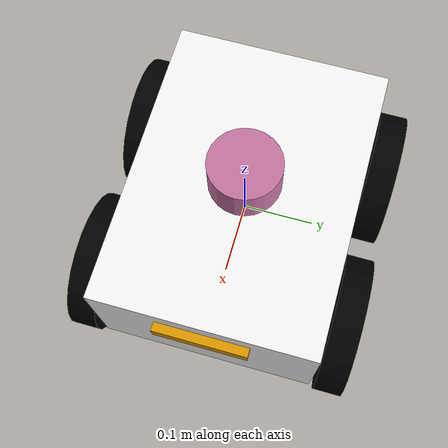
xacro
<?xml version="1.0"?>
<robot xmlns:xacro="http://www.ros.org/wiki/xacro" name="my_robot">
    <xacro:include filename="$(find robot_description)/urdf/robot_core.xacro"/>
    <xacro:include filename="$(find robot_description)/urdf/lidar.xacro"/>
    <xacro:include filename="$(find robot_description)/urdf/imu.xacro"/>
    <xacro:include filename="$(find robot_description)/urdf/depth_camera.xacro"/>
    <xacro:include filename="$(find robot_description)/urdf/gazebo_control.xacro"/>
</robot>

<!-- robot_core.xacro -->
<robot xmlns:xacro="http://www.ros.org/wiki/xacro" name="my_robot">
    <!-- Define robot constants -->
    <xacro:property name="base_width" value="0.31"/>
    <xacro:property name="base_length" value="0.42"/>
    <xacro:property name="base_height" value="0.18"/>

    <xacro:property name="wheel_radius" value="0.10"/>
    <xacro:property name="wheel_width" value="0.04"/>
    <xacro:property name="wheel_ygap" value="0.025"/>
    <xacro:property name="wheel_zoff" value="0.05"/>
    <xacro:property name="wheel_xoff" value="0.12"/>

    <!-- Define color -->
    <material name="white">
        <color rgba="1 1 1 1"/>
    </material>

    <material name="orange">
        <color rgba="1 0.3 0.1 1"/>
    </material>

    <material name="blue">
        <color rgba="0.2 0.2 1 1"/>
    </material>

    <material name="black">
        <color rgba="0 0 0 1"/>
    </material>

    <material name="red">
        <color rgba="1 0 0 1"/>
    </material>

     <!-- Define inertial (Quan tinh) property macros -->
    <xacro:macro name="box_inertial" params="m w h d">
        <inertial>
            <origin xyz="0 0 0" rpy="${pi/2} 0 ${pi/2}"/>
            <mass value="${m}"/>
            <inertia ixx="${(m/12) * (h*h + d*d)}" ixy="0.0" ixz="0.0" iyy="${(m/12) * (w*w + d*d)}" iyz="0.0" izz="${(m/12) * (w*w + h*h)}"/>
        </inertial>
    </xacro:macro>

    <xacro:macro name="cylinder_inertia" params="m r h">
        <inertial>
            <origin xyz="0 0 0" rpy="${pi/2} 0 0"/>
            <mass value="${m}"/>
            <inertia ixx="${(m/12) * (3*r*r + h*h)}" ixy="0" ixz="0" iyy="${(m/12) * (3*r*r + h*h)}" iyz="0.0" izz="${(m/12) * (r*r)}"/>
        </inertial>
    </xacro:macro>

    <xacro:macro name="sphere_inertia" params="m r">
        <inertial>
            <mass value="${m}"/>
            <inertia ixx="${(2/5) * m * (r*r)}" ixy="0" ixz="0" iyy="${(2/5) * m * (r*r)}" iyz="0.0" izz="${(2/5) * (r*r)}"/>
        </inertial>
    </xacro:macro>
    <xacro:property name="caster_xoff" value="0.14"/>

    <!-- Robot Footprint -->
    <link name="base_footprint">
        <xacro:box_inertial m="15" w="${base_width}" d="${base_length}" h="${base_height}"/>
    </link>

    <joint name="base_joint" type="fixed">
        <parent link="base_link"/>
        <child link="base_footprint"/>
        <origin xyz="0.0 0.0 -${wheel_radius+wheel_zoff}" rpy="0 0 0"/>
    </joint>

     <!-- Robot Base -->
    <link name="base_link">
        <visual>
            <geometry>
                <box size="${base_length} ${base_width} ${base_height}"/>
            </geometry>

            <material name="white"/>
        </visual>

        <collision>
            <geometry>
                <box size="${base_length} ${base_width} ${base_height}"/>
            </geometry>
        </collision>
    </link>
    <gazebo reference="base_link">
        <material>
            Gazebo/White
        </material>
    </gazebo>

    <!-- Wheels -->
    <xacro:macro name="wheel" params="prefix x_reflect y_reflect">
        <link name="${prefix}_link">
            <visual>
                <origin xyz="0 0 0" rpy="${pi/2} 0 0"/>
                <geometry>
                    <cylinder radius="${wheel_radius}" length="${wheel_width}"/>
                </geometry>
                <material name="black"/>
            </visual>

            <collision>
                <origin xyz="0 0 0" rpy="${pi/2} 0 0"/>
                <geometry>
                    <cylinder radius="${wheel_radius}" length="${wheel_width}"/>
                </geometry>
            </collision>

            <xacro:cylinder_inertia m="0.5" r="${wheel_radius}" h="${wheel_width}"/>
        </link>

        <joint name="${prefix}_joint" type="continuous">
            <parent link="base_link"/>
            <child link="${prefix}_link"/>
            <origin xyz="${x_reflect*wheel_xoff} ${y_reflect*(base_width/2+wheel_ygap)} ${-wheel_zoff}" rpy="0 0 0"/>
            <axis xyz="0 1 0"/>
        </joint>

        <gazebo reference="${prefix}_link">
            <mu1>0.1</mu1>
            <mu2>0.1</mu2>
            <material>
                Gazebo/Black
            </material>
        </gazebo>
    </xacro:macro>

    <xacro:wheel prefix="front_left" x_reflect="1" y_reflect="1" />
    <xacro:wheel prefix="front_right" x_reflect="1" y_reflect="-1" />
    <xacro:wheel prefix="back_left" x_reflect="-1" y_reflect="1" />
    <xacro:wheel prefix="back_right" x_reflect="-1" y_reflect="-1" />

    <!-- Caster Wheel -->
</robot>

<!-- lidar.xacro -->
<robot xmlns:xacro="http://www.ros.org/wiki/xacro" name="my_robot">
    <!-- Add Gazebo Lidar Plugin -->
    <link name="laser_frame">
        <inertial>
            <origin xyz="0 0 0" rpy="0 0 0"/>
            <mass value="0.125"/>
            <inertia ixx="0.001" ixy="0" ixz="0" iyy="0.001" iyz="0" izz="0.001"/>
        </inertial>

        <collision>
            <origin xyz="0 0 0" rpy="0 0 0"/>
            <geometry>
                <cylinder radius="0.0508" length="0.055"/>
            </geometry>
        </collision>

        <visual>
            <origin xyz="0 0 0" rpy="0 0 0"/>
            <geometry>
                <cylinder radius="0.0508" length="0.055"/>
            </geometry>
        </visual>
    </link>

    <joint name="lidar_joint" type="fixed">
        <parent link="base_link"/>
        <child link="laser_frame"/>
        <origin xyz="0 0 0.12" rpy="0 0 0"/>
    </joint>

    <gazebo reference="laser_frame">
        <sensor name="laser" type="ray">\
            <pose>0 0 0 0 0 0</pose>
            <always_on>true</always_on>
            <visualize>true</visualize>
            <update_rate>10</update_rate>
            <ray>
                <scan>
                    <horizontal>
                        <samples>360</samples>
                        <resolution>1</resolution>
                        <min_angle>-3.14</min_angle>
                        <max_angle>3.14</max_angle>
                    </horizontal>
                </scan>

                <range>
                    <min>0.3</min>
                    <max>12</max>
                    <resolution>0.01</resolution>
                </range>

                <noise>
                    <type>gaussian</type>
                    <mean>0.0</mean>
                    <stddev>0.01</stddev>
                </noise>
            </ray>

            <!-- Plugin: [scan] or [laser_controller] -->
            <plugin name="laser_controller" filename="libgazebo_ros_ray_sensor.so">
                <ros>
                    <remapping>~/out:=scan</remapping>
                </ros>

                <output_type>sensor_msgs/LaserScan</output_type>
                <frame_name>laser_frame</frame_name>
            </plugin>
        </sensor>
    </gazebo>
</robot>

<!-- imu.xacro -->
<robot xmlns:xacro="http://www.ros.org/wiki/xacro" name="my_robot">
    <!-- Define inertial (Quan tinh) property macros -->
    <xacro:macro name="box_inertial" params="m w h d">
        <inertial>
            <origin xyz="0 0 0" rpy="${pi/2} 0 ${pi/2}"/>
            <mass value="${m}"/>
            <inertia ixx="${(m/12) * (h*h + d*d)}" ixy="0.0" ixz="0.0" iyy="${(m/12) * (w*w + d*d)}" iyz="0.0" izz="${(m/12) * (w*w + h*h)}"/>
        </inertial>
    </xacro:macro>

    <xacro:macro name="cylinder_inertia" params="m r h">
        <inertial>
            <origin xyz="0 0 0" rpy="${pi/2} 0 0"/>
            <mass value="${m}"/>
            <inertia ixx="${(m/12) * (3*r*r + h*h)}" ixy="0" ixz="0" iyy="${(m/12) * (3*r*r + h*h)}" iyz="0.0" izz="${(m/12) * (r*r)}"/>
        </inertial>
    </xacro:macro>

    <xacro:macro name="sphere_inertia" params="m r">
        <inertial>
            <mass value="${m}"/>
            <inertia ixx="${(2/5) * m * (r*r)}" ixy="0" ixz="0" iyy="${(2/5) * m * (r*r)}" iyz="0.0" izz="${(2/5) * (r*r)}"/>
        </inertial>
    </xacro:macro>

    <xacro:property name="caster_xoff" value="0.14"/>

    <link name="imu_link">
        <visual>
            <geometry>
                <box size="0.1 0.1 0.1"/>
            </geometry>
        </visual>

        <collision>
            <geometry>
                <box size="0.1 0.1 0.1"/>
            </geometry>
        </collision>

        <xacro:box_inertial m="0.1" w="0.1" d="0.1" h="0.1"/>
    </link>

    <joint name="imu_joint" type="fixed">
        <parent link="base_link"/>
        <child link="imu_link"/>
        <origin xyz="0 0 0.01"/>
    </joint>

    <!-- Add Gazebo Imu Plugin with GazeboRosImuSensor-->
    <gazebo reference="imu_link">
        <sensor name="imu_sensor" type="imu">
            <plugin filename="libgazebo_ros_imu_sensor.so" name="imu_plugin">
                <ros>
                    <namespace>/demo</namespace>
                    <remapping>~/out:=imu</remapping>
                </ros>

                <initial_orientation_as_reference>false</initial_orientation_as_reference>
            </plugin>
            <always_on>true</always_on>
            <update_rate>100</update_rate>
            <visualize>true</visualize>

            <imu>
                <!-- Add noise imu angular vel -->
                <angular_velocity>
                    <x>
                        <noise type="gaussian">
                            <mean>0.0</mean>
                            <stddev>2e-4</stddev>
                            <bias_mean>0.0000075</bias_mean>
                            <bias_stddev>0.0000008</bias_stddev>
                        </noise>
                    </x>

                    <y>
                        <noise type="gaussian">
                            <mean>0.0</mean>
                            <stddev>2e-4</stddev>
                            <bias_mean>0.0000075</bias_mean>
                            <bias_stddev>0.0000008</bias_stddev>
                        </noise>
                    </y>

                    <z>
                        <noise type="gaussian">
                            <mean>0.0</mean>
                            <stddev>2e-4</stddev>
                            <bias_mean>0.0000075</bias_mean>
                            <bias_stddev>0.0000008</bias_stddev>
                        </noise>
                    </z>
                </angular_velocity>

                <!-- Add noise imu linear vel -->
                <linear_acceleration>
                    <x>
                        <noise type="gaussian">
                            <mean>0.0</mean>
                            <stddev>1.7e-2</stddev>
                            <bias_mean>0.1</bias_mean>
                            <bias_stddev>0.001</bias_stddev>
                        </noise>
                    </x>

                    <y>
                        <noise type="gaussian">
                            <mean>0.0</mean>
                            <stddev>1.7e-2</stddev>
                            <bias_mean>0.1</bias_mean>
                            <bias_stddev>0.001</bias_stddev>
                        </noise>
                    </y>

                    <z>
                        <noise type="gaussian">
                            <mean>0.0</mean>
                            <stddev>1.7e-2</stddev>
                            <bias_mean>0.1</bias_mean>
                            <bias_stddev>0.001</bias_stddev>
                        </noise>
                    </z>
                </linear_acceleration>
            </imu>
        </sensor>
    </gazebo>
</robot>

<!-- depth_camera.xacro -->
<robot xmlns:xacro="http://www.ros.org/wiki/xacro" name="my_robot">
    <!-- Add Gazebo Depth Camera -->
    <link name="camera_link">
        <visual>
            <origin xyz="0 0 0" rpy="0 0 0"/>
            <geometry>
                <box size="0.015 0.130 0.022"/>
            </geometry>
        </visual>

        <collision>
            <origin xyz="0 0 0" rpy="0 0 0"/>
            <geometry>
                <box size="0.015 0.130 0.022"/>
            </geometry>
        </collision>

        <inertial>
            <origin xyz="0 0 0" rpy="0 0 0"/>
            <mass value="0.035"/>
            <inertia ixx="0.001" ixy="0" ixz="0" iyy="0.001" iyz="0" izz="0.001"/>
        </inertial>
    </link>

    <joint name="camera_joint" type="fixed">
        <parent link="base_link"/>
        <child link="camera_link"/>
        <origin xyz="0.215 0 0.05" rpy="0 0 0"/>
    </joint>

    <link name="camera_depth_frame"/>

    <joint name="camera_depth_joint" type="fixed">
        <origin xyz="0 0 0" rpy="${-pi/2} 0 ${-pi/2}"/>
        <parent link="camera_link"/>
        <child link="camera_depth_frame"/>
    </joint>

    <gazebo reference="camera_link">
        <sensor name="depth_camera" type="depth">
            <visualize>true</visualize>
            <update_rate>30.0</update_rate>
            <camera name="camera">
                <horizontal_fov>1.047198</horizontal_fov>
                <image>
                    <width>640</width>
                    <height>480</height>
                    <format>R8G8B8</format>
                </image>

                <clip>
                    <near>0.05</near>
                    <far>3</far>
                </clip>
            </camera>

            <plugin name="depth_camera_controller" filename="libgazebo_ros_camera.so">
                <baseline>0.2</baseline>
                <alwaysOn>true</alwaysOn>
                <updateRate>0.0</updateRate>
                <frame_name>camera_depth_frame</frame_name>
                <pointCloudCutoff>0.5</pointCloudCutoff>
                <pointCloudCutoffMax>3.0</pointCloudCutoffMax>
                <distrotionK1>0</distrotionK1>
                <distrotionK2>0</distrotionK2>
                <distrotionK3>0</distrotionK3>
                <distrotionT1>0</distrotionT1>
                <distrotionT2>0</distrotionT2>
                <CxPrime>0</CxPrime>
                <Cx>0</Cx>
                <Cy>0</Cy>
                <focalLength>0</focalLength>
                <hackBaseline>0</hackBaseline>
            </plugin>
        </sensor>
    </gazebo>
</robot>
